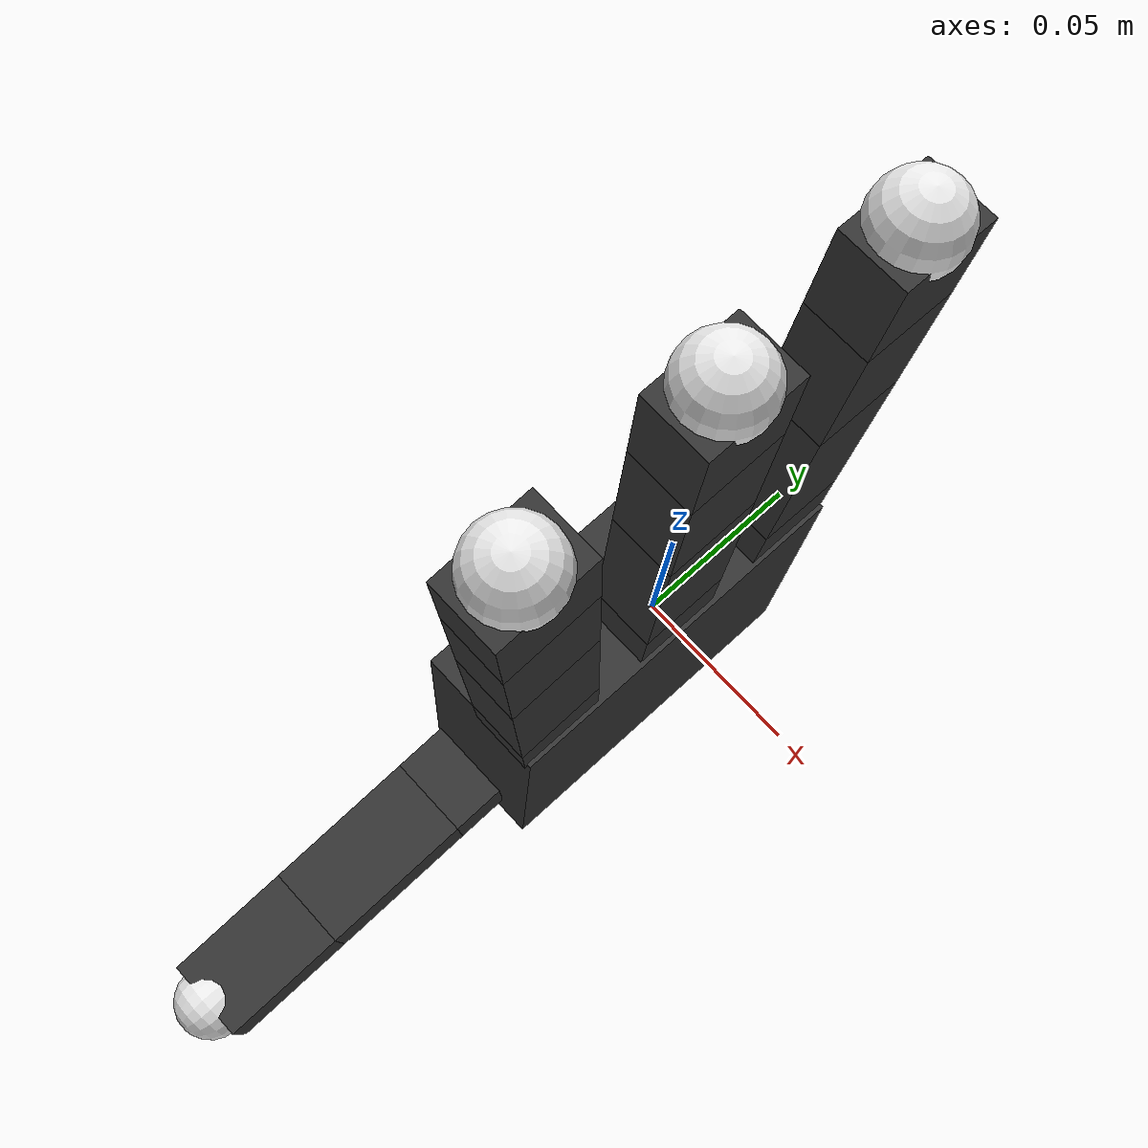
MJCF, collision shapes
<mujoco model="allegro_left">
  <compiler angle="radian" meshdir="./mjcf/allegro"/>

  <option gravity="0 0 0" />

  <asset>
    <mesh name="base_link_left" file="meshes/base_link_left.STL" />
    <mesh name="link_0.0" file="meshes/link_0.0.STL" />
    <mesh name="link_1.0" file="meshes/link_1.0.STL" />
    <mesh name="link_2.0" file="meshes/link_2.0.STL" />
    <mesh name="link_3.0" file="meshes/link_3.0.STL" />
    <mesh name="link_3.0_tip" file="meshes/link_3.0_tip.STL" />
    <mesh name="link_12.0_left" file="meshes/link_12.0_left.STL" />
    <mesh name="link_13.0" file="meshes/link_13.0.STL" />
    <mesh name="link_14.0" file="meshes/link_14.0.STL" />
    <mesh name="link_15.0" file="meshes/link_15.0.STL" />
    <mesh name="link_15.0_tip" file="meshes/link_15.0_tip.STL" />
  </asset>

  <worldbody>
    <body name="base" >
      <body name="base_link" >
        <geom name="base_linkG0" quat="0.707107 -0.707107 0 0" type="mesh" contype="0" conaffinity="0" group="1" density="0" rgba="0.2 0.2 0.2 1" mesh="base_link_left" />
        <geom name="base_linkG1" size="0.0204 0.0565 0.0475" pos="-0.0093 0 -0.0475" type="box" rgba="0.2 0.2 0.2 1" />
        <body name="link_8.0" pos="0 0.0435 -0.001542" quat="0.999048 -0.0436194 0 0" >
          <joint name="joint_8.0" pos="0 0 0" axis="0 0 1" range="-0.47 0.47" />
          <geom name="link_8.0G0" type="mesh" contype="0" conaffinity="0" group="1" density="0" rgba="0.2 0.2 0.2 1" mesh="link_0.0" />
          <geom name="link_8.0G1" size="0.0098 0.01375 0.0082" pos="0 0 0.0082" type="box" rgba="0.2 0.2 0.2 1" />
          <body name="link_9.0" pos="0 0 0.0164" >
            <joint name="joint_9.0" pos="0 0 0" axis="0 1 0" range="-0.196 1.61" />
            <geom name="link_9.0G0" type="mesh" contype="0" conaffinity="0" group="1" density="0" rgba="0.2 0.2 0.2 1" mesh="link_1.0" />
            <geom name="link_9.0G1" size="0.0098 0.01375 0.027" pos="0 0 0.027" type="box" rgba="0.2 0.2 0.2 1" />
            <body name="link_10.0" pos="0 0 0.054" >
              <joint name="joint_10.0" pos="0 0 0" axis="0 1 0" range="-0.174 1.709" />
              <geom name="link_10.0G0" type="mesh" contype="0" conaffinity="0" group="1" density="0" rgba="0.2 0.2 0.2 1" mesh="link_2.0" />
              <geom name="link_10.0G1" size="0.0098 0.01375 0.0192" pos="0 0 0.0192" type="box" rgba="0.2 0.2 0.2 1" />
              <body name="link_11.0" pos="0 0 0.0384" >
                <joint name="joint_11.0" pos="0 0 0" axis="0 1 0" range="-0.227 1.618" />
                <geom name="link_11.0G0" type="mesh" contype="0" conaffinity="0" group="1" density="0" rgba="0.2 0.2 0.2 1" mesh="link_3.0" />
                <geom name="link_11.0G1" size="0.0098 0.01375 0.01335" pos="0 0 0.01335" type="box" rgba="0.2 0.2 0.2 1" />
                <body name="link_11.0_tip" pos="0 0 0.0267" >
                  <geom name="link_11.0_tipG0" type="mesh" contype="0" conaffinity="0" group="1" density="0" rgba="0.9 0.9 0.9 1" mesh="link_3.0_tip" />
                  <geom name="link_11.0_tipG1" size="0.012" rgba="0.9 0.9 0.9 1" />
                </body>
              </body>
            </body>
          </body>
        </body>
        <body name="link_4.0" pos="0 0 0.0007" >
          <joint name="joint_4.0" pos="0 0 0" axis="0 0 1" range="-0.47 0.47" />
          <geom name="link_4.0G0" type="mesh" contype="0" conaffinity="0" group="1" density="0" rgba="0.2 0.2 0.2 1" mesh="link_0.0" />
          <geom name="link_4.0G1" size="0.0098 0.01375 0.0082" pos="0 0 0.0082" type="box" rgba="0.2 0.2 0.2 1" />
          <body name="link_5.0" pos="0 0 0.0164" >
            <joint name="joint_5.0" pos="0 0 0" axis="0 1 0" range="-0.196 1.61" />
            <geom name="link_5.0G0" type="mesh" contype="0" conaffinity="0" group="1" density="0" rgba="0.2 0.2 0.2 1" mesh="link_1.0" />
            <geom name="link_5.0G1" size="0.0098 0.01375 0.027" pos="0 0 0.027" type="box" rgba="0.2 0.2 0.2 1" />
            <body name="link_6.0" pos="0 0 0.054" >
              <joint name="joint_6.0" pos="0 0 0" axis="0 1 0" range="-0.174 1.709" />
              <geom name="link_6.0G0" type="mesh" contype="0" conaffinity="0" group="1" density="0" rgba="0.2 0.2 0.2 1" mesh="link_2.0" />
              <geom name="link_6.0G1" size="0.0098 0.01375 0.0192" pos="0 0 0.0192" type="box" rgba="0.2 0.2 0.2 1" />
              <body name="link_7.0" pos="0 0 0.0384" >
                <joint name="joint_7.0" pos="0 0 0" axis="0 1 0" range="-0.227 1.618" />
                <geom name="link_7.0G0" type="mesh" contype="0" conaffinity="0" group="1" density="0" rgba="0.2 0.2 0.2 1" mesh="link_3.0" />
                <geom name="link_7.0G1" size="0.0098 0.01375 0.01335" pos="0 0 0.01335" type="box" rgba="0.2 0.2 0.2 1" />
                <body name="link_7.0_tip" pos="0 0 0.0267" >
                  <geom name="link_7.0_tipG0" type="mesh" contype="0" conaffinity="0" group="1" density="0" rgba="0.9 0.9 0.9 1" mesh="link_3.0_tip" />
                  <geom name="link_7.0_tipG1" size="0.012" rgba="0.9 0.9 0.9 1" />
                </body>
              </body>
            </body>
          </body>
        </body>
        <body name="link_0.0" pos="0 -0.0435 -0.001542" quat="0.999048 0.0436194 0 0" >
          <joint name="joint_0.0" pos="0 0 0" axis="0 0 1" range="-0.47 0.47" />
          <geom name="link_0.0G0" type="mesh" contype="0" conaffinity="0" group="1" density="0" rgba="0.2 0.2 0.2 1" mesh="link_0.0" />
          <geom name="link_0.0G1" size="0.0098 0.01375 0.0082" pos="0 0 0.0082" type="box" rgba="0.2 0.2 0.2 1" />
          <body name="link_1.0" pos="0 0 0.0164" >
            <joint name="joint_1.0" pos="0 0 0" axis="0 1 0" range="-0.196 1.61" />
            <geom name="link_1.0G0" type="mesh" contype="0" conaffinity="0" group="1" density="0" rgba="0.2 0.2 0.2 1" mesh="link_1.0" />
            <geom name="link_1.0G1" size="0.0098 0.01375 0.027" pos="0 0 0.027" type="box" rgba="0.2 0.2 0.2 1" />
            <body name="link_2.0" pos="0 0 0.054" >
              <joint name="joint_2.0" pos="0 0 0" axis="0 1 0" range="-0.174 1.709" />
              <geom name="link_2.0G0" type="mesh" contype="0" conaffinity="0" group="1" density="0" rgba="0.2 0.2 0.2 1" mesh="link_2.0" />
              <geom name="link_2.0G1" size="0.0098 0.01375 0.0192" pos="0 0 0.0192" type="box" rgba="0.2 0.2 0.2 1" />
              <body name="link_3.0" pos="0 0 0.0384" >
                <joint name="joint_3.0" pos="0 0 0" axis="0 1 0" range="-0.227 1.618" />
                <geom name="link_3.0G0" type="mesh" contype="0" conaffinity="0" group="1" density="0" rgba="0.2 0.2 0.2 1" mesh="link_3.0" />
                <geom name="link_3.0G1" size="0.0098 0.01375 0.01335" pos="0 0 0.01335" type="box" rgba="0.2 0.2 0.2 1" />
                <body name="link_3.0_tip" pos="0 0 0.0267" >
                  <geom name="link_3.0_tipG0" type="mesh" contype="0" conaffinity="0" group="1" density="0" rgba="0.9 0.9 0.9 1" mesh="link_3.0_tip" />
                  <geom name="link_3.0_tipG1" size="0.012" rgba="0.9 0.9 0.9 1" />
                </body>
              </body>
            </body>
          </body>
        </body>
        <body name="link_12.0" pos="-0.0182 -0.019333 -0.045987" quat="0.477714 0.521334 -0.521334 0.477714" >
          <joint name="joint_12.0" pos="0 0 0" axis="1 0 0" range="0.263 1.396" />
          <geom name="link_12.0G0" quat="8.94897e-10 1 0 0" type="mesh" contype="0" conaffinity="0" group="1" density="0" rgba="0.2 0.2 0.2 1" mesh="link_12.0_left" />
          <geom name="link_12.0G1" size="0.0179 0.017 0.02275" pos="-0.0179 -0.009 0.0145" type="box" rgba="0.2 0.2 0.2 1" />
          <body name="link_13.0" pos="-0.027 -0.005 0.0399" >
            <joint name="joint_13.0" pos="0 0 0" axis="0 0 -1" range="-0.105 1.163" />
            <geom name="link_13.0G0" type="mesh" contype="0" conaffinity="0" group="1" density="0" rgba="0.2 0.2 0.2 1" mesh="link_13.0" />
            <geom name="link_13.0G1" size="0.0098 0.01375 0.00885" pos="0 0 0.00885" type="box" rgba="0.2 0.2 0.2 1" />
            <body name="link_14.0" pos="0 0 0.0177" >
              <joint name="joint_14.0" pos="0 0 0" axis="0 1 0" range="-0.189 1.644" />
              <geom name="link_14.0G0" type="mesh" contype="0" conaffinity="0" group="1" density="0" rgba="0.2 0.2 0.2 1" mesh="link_14.0" />
              <geom name="link_14.0G1" size="0.0098 0.01375 0.0257" pos="0 0 0.0257" type="box" rgba="0.2 0.2 0.2 1" />
              <body name="link_15.0" pos="0 0 0.0514" >
                <joint name="joint_15.0" pos="0 0 0" axis="0 1 0" range="-0.162 1.719" />
                <geom name="link_15.0G0" type="mesh" contype="0" conaffinity="0" group="1" density="0" rgba="0.2 0.2 0.2 1" mesh="link_15.0" />
                <geom name="link_15.0G1" size="0.0098 0.01375 0.02115" pos="0 0 0.02115" type="box" rgba="0.2 0.2 0.2 1" />
                <body name="link_15.0_tip" pos="0 0 0.0423" >
                  <geom name="link_15.0_tipG0" type="mesh" contype="0" conaffinity="0" group="1" density="0" rgba="0.9 0.9 0.9 1" mesh="link_15.0_tip" />
                  <geom name="link_15.0_tipG1" size="0.012" rgba="0.9 0.9 0.9 1" />
                </body>
              </body>
            </body>
          </body>
        </body>
      </body>
    </body>
  </worldbody>
</mujoco>
